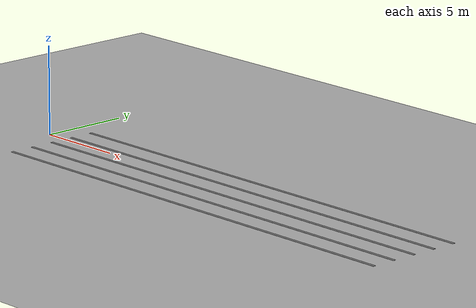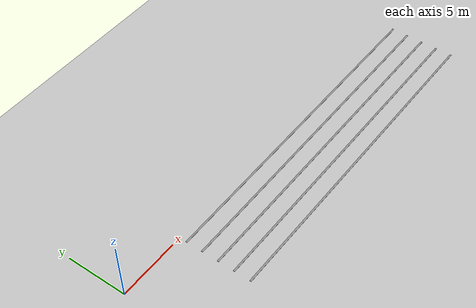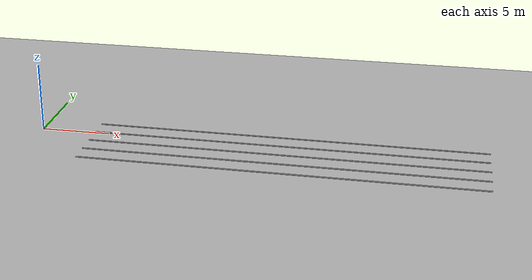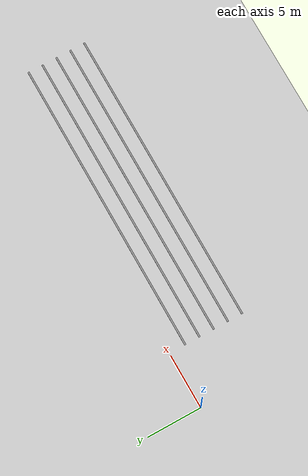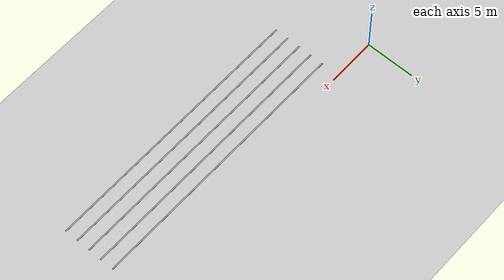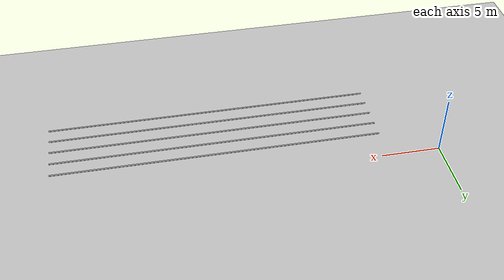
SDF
<sdf version="1.4">
 <world name="default">
  <model name="tray_5">
   <static>1</static>
   <link name="link_0">
    <inertial>
     <mass>0.019881</mass>
     <inertia>
      <ixz>0</ixz>
      <ixx>4.769e-05</ixx>
      <ixy>0</ixy>
      <izz>0.0104111</izz>
      <iyy>0.0103713</iyy>
      <iyz>0</iyz>
     </inertia>
    </inertial>
    <collision name="collision">
     <geometry><box><size>27.09 0.15 0.02</size></box></geometry>
     <pose>18.54 -6.75 1.38235 0.0 0.0 0.0</pose>
     <surface>
      <contact>
       <collide_without_contact>0</collide_without_contact>
       <collide_without_contact_bitmask>1</collide_without_contact_bitmask>
       <collide_bitmask>1</collide_bitmask>
       <bullet>
        <kd>1</kd>
        <split_impulse>1</split_impulse>
        <soft_erp>0.2</soft_erp>
        <split_impulse_penetration_threshold>-0.01</split_impulse_penetration_threshold>
        <kp>1e+13</kp>
        <soft_cfm>0</soft_cfm>
       </bullet>
       <ode>
        <max_vel>0.01</max_vel>
        <kd>1</kd>
        <soft_erp>0.2</soft_erp>
        <min_depth>0</min_depth>
        <kp>1e+13</kp>
        <soft_cfm>0</soft_cfm>
       </ode>
      </contact>
      <friction>
       <ode><mu>1</mu><slip2>0</slip2><slip1>0</slip1><fdir1>0 0 0</fdir1><mu2>1</mu2></ode>
       <torsional>
        <coefficient>1</coefficient>
        <surface_radius>0</surface_radius>
        <patch_radius>0</patch_radius>
        <ode><slip>0</slip></ode>
        <use_patch_radius>1</use_patch_radius>
       </torsional>
      </friction>
      <bounce><threshold>1e+06</threshold><restitution_coefficient>0</restitution_coefficient></bounce>
     </surface>
    </collision>
    <visual name="visual">
     <pose>18.54 -6.75 1.38235 0.0 0.0 0.0</pose>
     <geometry><box><size>27.09 0.15 0.02</size></box></geometry>
     <material>
      <script><uri>file://media/materials/scripts/gazebo.material</uri><name>Gazebo/Grey</name></script>
      <emissive>0 0 0 1</emissive>
      <shader type="vertex"><normal_map>__default__</normal_map></shader>
      <specular>0.01 0.01 0.01 1</specular>
      <lighting>1</lighting>
      <ambient>0.3 0.3 0.3 1</ambient>
      <diffuse>0.7 0.7 0.7 1</diffuse>
     </material>
    </visual>
   </link>
  </model>
  <model name="tray_6">
   <static>1</static>
   <link name="link_0">
    <inertial>
     <mass>0.019881</mass>
     <inertia>
      <ixz>0</ixz>
      <ixx>4.769e-05</ixx>
      <ixy>0</ixy>
      <izz>0.0104111</izz>
      <iyy>0.0103713</iyy>
      <iyz>0</iyz>
     </inertia>
    </inertial>
    <collision name="collision">
     <geometry><box><size>27.09 0.15 0.02</size></box></geometry>
     <pose>18.54 -5.40 1.38235 0.0 0.0 0.0</pose>
     <surface>
      <contact>
       <collide_without_contact>0</collide_without_contact>
       <collide_without_contact_bitmask>1</collide_without_contact_bitmask>
       <collide_bitmask>1</collide_bitmask>
       <bullet>
        <kd>1</kd>
        <split_impulse>1</split_impulse>
        <soft_erp>0.2</soft_erp>
        <split_impulse_penetration_threshold>-0.01</split_impulse_penetration_threshold>
        <kp>1e+13</kp>
        <soft_cfm>0</soft_cfm>
       </bullet>
       <ode>
        <max_vel>0.01</max_vel>
        <kd>1</kd>
        <soft_erp>0.2</soft_erp>
        <min_depth>0</min_depth>
        <kp>1e+13</kp>
        <soft_cfm>0</soft_cfm>
       </ode>
      </contact>
      <friction>
       <ode><mu>1</mu><slip2>0</slip2><slip1>0</slip1><fdir1>0 0 0</fdir1><mu2>1</mu2></ode>
       <torsional>
        <coefficient>1</coefficient>
        <surface_radius>0</surface_radius>
        <patch_radius>0</patch_radius>
        <ode><slip>0</slip></ode>
        <use_patch_radius>1</use_patch_radius>
       </torsional>
      </friction>
      <bounce><threshold>1e+06</threshold><restitution_coefficient>0</restitution_coefficient></bounce>
     </surface>
    </collision>
    <visual name="visual">
     <pose>18.54 -5.40 1.38235 0.0 0.0 0.0</pose>
     <geometry><box><size>27.09 0.15 0.02</size></box></geometry>
     <material>
      <script><uri>file://media/materials/scripts/gazebo.material</uri><name>Gazebo/Grey</name></script>
      <emissive>0 0 0 1</emissive>
      <shader type="vertex"><normal_map>__default__</normal_map></shader>
      <specular>0.01 0.01 0.01 1</specular>
      <lighting>1</lighting>
      <ambient>0.3 0.3 0.3 1</ambient>
      <diffuse>0.7 0.7 0.7 1</diffuse>
     </material>
    </visual>
   </link>
  </model>
  <model name="tray_7">
   <static>1</static>
   <link name="link_0">
    <inertial>
     <mass>0.019881</mass>
     <inertia>
      <ixz>0</ixz>
      <ixx>4.769e-05</ixx>
      <ixy>0</ixy>
      <izz>0.0104111</izz>
      <iyy>0.0103713</iyy>
      <iyz>0</iyz>
     </inertia>
    </inertial>
    <collision name="collision">
     <geometry><box><size>27.09 0.15 0.02</size></box></geometry>
     <pose>18.54 -4.05 1.38235 0.0 0.0 0.0</pose>
     <surface>
      <contact>
       <collide_without_contact>0</collide_without_contact>
       <collide_without_contact_bitmask>1</collide_without_contact_bitmask>
       <collide_bitmask>1</collide_bitmask>
       <bullet>
        <kd>1</kd>
        <split_impulse>1</split_impulse>
        <soft_erp>0.2</soft_erp>
        <split_impulse_penetration_threshold>-0.01</split_impulse_penetration_threshold>
        <kp>1e+13</kp>
        <soft_cfm>0</soft_cfm>
       </bullet>
       <ode>
        <max_vel>0.01</max_vel>
        <kd>1</kd>
        <soft_erp>0.2</soft_erp>
        <min_depth>0</min_depth>
        <kp>1e+13</kp>
        <soft_cfm>0</soft_cfm>
       </ode>
      </contact>
      <friction>
       <ode><mu>1</mu><slip2>0</slip2><slip1>0</slip1><fdir1>0 0 0</fdir1><mu2>1</mu2></ode>
       <torsional>
        <coefficient>1</coefficient>
        <surface_radius>0</surface_radius>
        <patch_radius>0</patch_radius>
        <ode><slip>0</slip></ode>
        <use_patch_radius>1</use_patch_radius>
       </torsional>
      </friction>
      <bounce><threshold>1e+06</threshold><restitution_coefficient>0</restitution_coefficient></bounce>
     </surface>
    </collision>
    <visual name="visual">
     <pose>18.54 -4.05 1.38235 0.0 0.0 0.0</pose>
     <geometry><box><size>27.09 0.15 0.02</size></box></geometry>
     <material>
      <script><uri>file://media/materials/scripts/gazebo.material</uri><name>Gazebo/Grey</name></script>
      <emissive>0 0 0 1</emissive>
      <shader type="vertex"><normal_map>__default__</normal_map></shader>
      <specular>0.01 0.01 0.01 1</specular>
      <lighting>1</lighting>
      <ambient>0.3 0.3 0.3 1</ambient>
      <diffuse>0.7 0.7 0.7 1</diffuse>
     </material>
    </visual>
   </link>
  </model>
  <model name="tray_8">
   <static>1</static>
   <link name="link_0">
    <inertial>
     <mass>0.019881</mass>
     <inertia>
      <ixz>0</ixz>
      <ixx>4.769e-05</ixx>
      <ixy>0</ixy>
      <izz>0.0104111</izz>
      <iyy>0.0103713</iyy>
      <iyz>0</iyz>
     </inertia>
    </inertial>
    <collision name="collision">
     <geometry><box><size>27.09 0.15 0.02</size></box></geometry>
     <pose>18.54 -2.70 1.38235 0.0 0.0 0.0</pose>
     <surface>
      <contact>
       <collide_without_contact>0</collide_without_contact>
       <collide_without_contact_bitmask>1</collide_without_contact_bitmask>
       <collide_bitmask>1</collide_bitmask>
       <bullet>
        <kd>1</kd>
        <split_impulse>1</split_impulse>
        <soft_erp>0.2</soft_erp>
        <split_impulse_penetration_threshold>-0.01</split_impulse_penetration_threshold>
        <kp>1e+13</kp>
        <soft_cfm>0</soft_cfm>
       </bullet>
       <ode>
        <max_vel>0.01</max_vel>
        <kd>1</kd>
        <soft_erp>0.2</soft_erp>
        <min_depth>0</min_depth>
        <kp>1e+13</kp>
        <soft_cfm>0</soft_cfm>
       </ode>
      </contact>
      <friction>
       <ode><mu>1</mu><slip2>0</slip2><slip1>0</slip1><fdir1>0 0 0</fdir1><mu2>1</mu2></ode>
       <torsional>
        <coefficient>1</coefficient>
        <surface_radius>0</surface_radius>
        <patch_radius>0</patch_radius>
        <ode><slip>0</slip></ode>
        <use_patch_radius>1</use_patch_radius>
       </torsional>
      </friction>
      <bounce><threshold>1e+06</threshold><restitution_coefficient>0</restitution_coefficient></bounce>
     </surface>
    </collision>
    <visual name="visual">
     <pose>18.54 -2.70 1.38235 0.0 0.0 0.0</pose>
     <geometry><box><size>27.09 0.15 0.02</size></box></geometry>
     <material>
      <script><uri>file://media/materials/scripts/gazebo.material</uri><name>Gazebo/Grey</name></script>
      <emissive>0 0 0 1</emissive>
      <shader type="vertex"><normal_map>__default__</normal_map></shader>
      <specular>0.01 0.01 0.01 1</specular>
      <lighting>1</lighting>
      <ambient>0.3 0.3 0.3 1</ambient>
      <diffuse>0.7 0.7 0.7 1</diffuse>
     </material>
    </visual>
   </link>
  </model>
  <model name="tray_9">
   <static>1</static>
   <link name="link_0">
    <inertial>
     <mass>0.019881</mass>
     <inertia>
      <ixz>0</ixz>
      <ixx>4.769e-05</ixx>
      <ixy>0</ixy>
      <izz>0.0104111</izz>
      <iyy>0.0103713</iyy>
      <iyz>0</iyz>
     </inertia>
    </inertial>
    <collision name="collision">
     <geometry><box><size>27.09 0.15 0.02</size></box></geometry>
     <pose>18.54 -1.35 1.38235 0.0 0.0 0.0</pose>
     <surface>
      <contact>
       <collide_without_contact>0</collide_without_contact>
       <collide_without_contact_bitmask>1</collide_without_contact_bitmask>
       <collide_bitmask>1</collide_bitmask>
       <bullet>
        <kd>1</kd>
        <split_impulse>1</split_impulse>
        <soft_erp>0.2</soft_erp>
        <split_impulse_penetration_threshold>-0.01</split_impulse_penetration_threshold>
        <kp>1e+13</kp>
        <soft_cfm>0</soft_cfm>
       </bullet>
       <ode>
        <max_vel>0.01</max_vel>
        <kd>1</kd>
        <soft_erp>0.2</soft_erp>
        <min_depth>0</min_depth>
        <kp>1e+13</kp>
        <soft_cfm>0</soft_cfm>
       </ode>
      </contact>
      <friction>
       <ode><mu>1</mu><slip2>0</slip2><slip1>0</slip1><fdir1>0 0 0</fdir1><mu2>1</mu2></ode>
       <torsional>
        <coefficient>1</coefficient>
        <surface_radius>0</surface_radius>
        <patch_radius>0</patch_radius>
        <ode><slip>0</slip></ode>
        <use_patch_radius>1</use_patch_radius>
       </torsional>
      </friction>
      <bounce><threshold>1e+06</threshold><restitution_coefficient>0</restitution_coefficient></bounce>
     </surface>
    </collision>
    <visual name="visual">
     <pose>18.54 -1.35 1.38235 0.0 0.0 0.0</pose>
     <geometry><box><size>27.09 0.15 0.02</size></box></geometry>
     <material>
      <script><uri>file://media/materials/scripts/gazebo.material</uri><name>Gazebo/Grey</name></script>
      <emissive>0 0 0 1</emissive>
      <shader type="vertex"><normal_map>__default__</normal_map></shader>
      <specular>0.01 0.01 0.01 1</specular>
      <lighting>1</lighting>
      <ambient>0.3 0.3 0.3 1</ambient>
      <diffuse>0.7 0.7 0.7 1</diffuse>
     </material>
    </visual>
   </link>
  </model>
  <include><uri>model://sun</uri></include>
  <include><uri>model://ground_plane</uri></include>
 </world>
</sdf>
